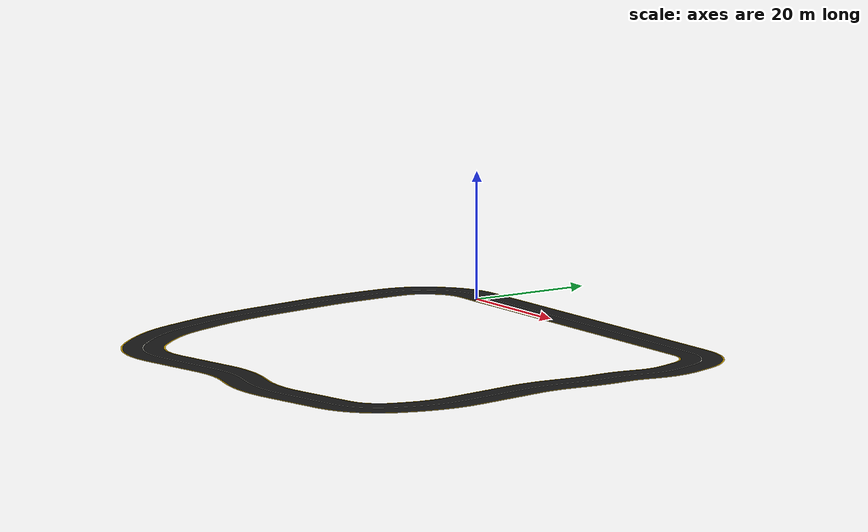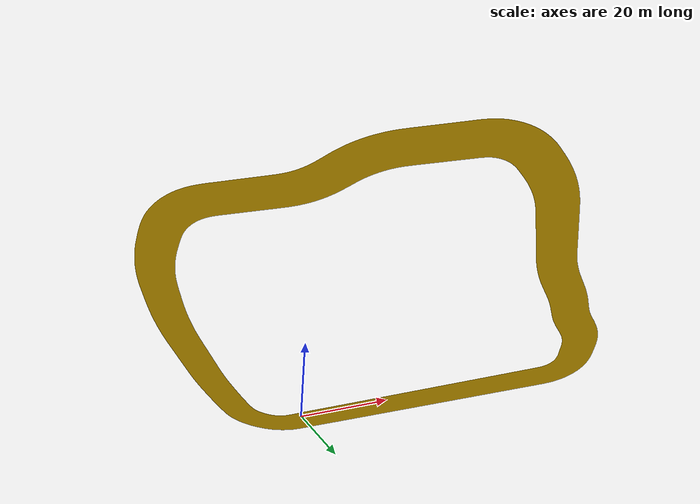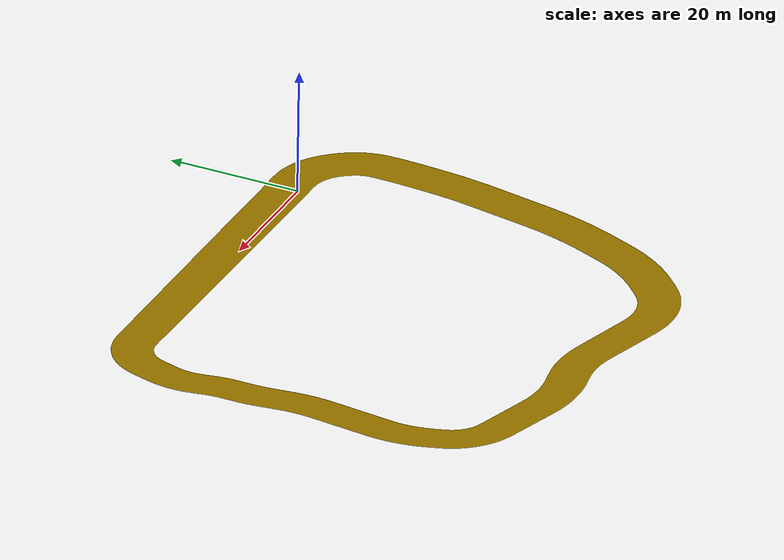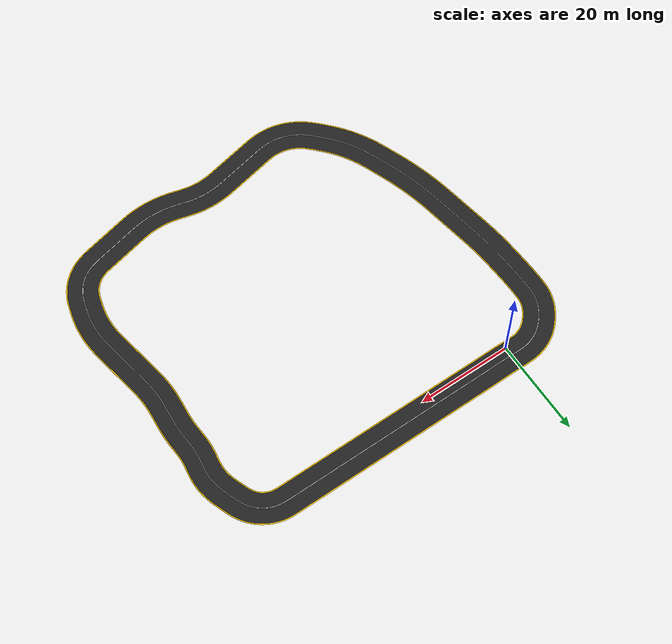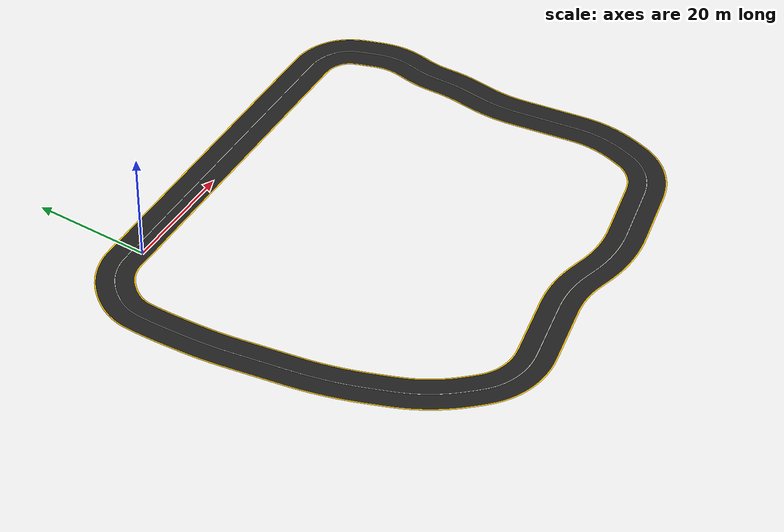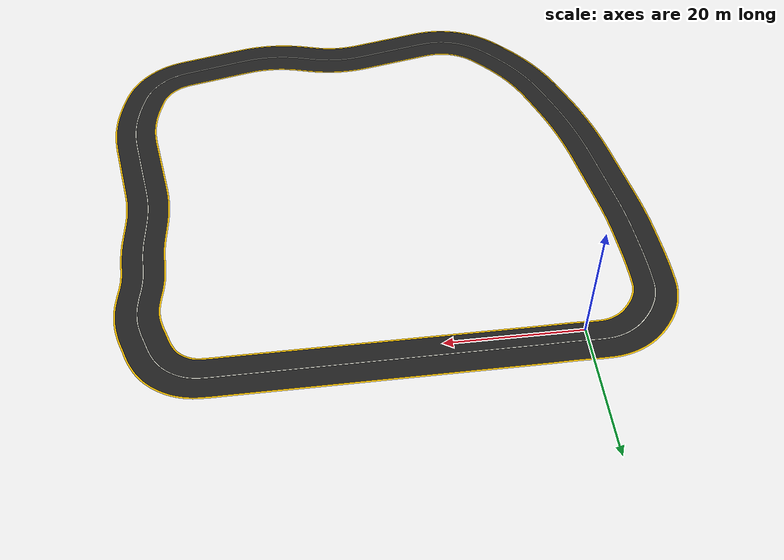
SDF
<?xml version="1.0"?>
<sdf version="1.7">
  <model name="smooth_road">
    <static>true</static>
    <link name="road_surface">
      <collision name="smooth_asphalt_collision">
        <pose>0 0 0.026 0 0 0</pose>
        <geometry>
          <mesh>
            <uri>meshes/asphalt.obj</uri>
          </mesh>
        </geometry>
      </collision>
      <visual name="continuous_yellow_border">
        <pose>0 0 0.026 0 0 0</pose>
        <geometry>
          <mesh>
            <uri>meshes/yellow_border.obj</uri>
          </mesh>
        </geometry>
        <material>
          <ambient>1.0 0.78 0.0 1.0</ambient>
          <diffuse>1.0 0.78 0.0 1.0</diffuse>
          <specular>0.08 0.08 0.06 1.0</specular>
        </material>
      </visual>
      <visual name="continuous_asphalt">
        <pose>0 0 0.029 0 0 0</pose>
        <geometry>
          <mesh>
            <uri>meshes/asphalt.obj</uri>
          </mesh>
        </geometry>
        <material>
          <ambient>0.13 0.13 0.13 1.0</ambient>
          <diffuse>0.13 0.13 0.13 1.0</diffuse>
          <specular>0.035 0.035 0.035 1.0</specular>
        </material>
      </visual>
      <visual name="center_lane_line">
        <pose>0 0 0.033 0 0 0</pose>
        <geometry>
          <mesh>
            <uri>meshes/center_line.obj</uri>
          </mesh>
        </geometry>
        <material>
          <ambient>0.95 0.95 0.9 1.0</ambient>
          <diffuse>0.95 0.95 0.9 1.0</diffuse>
        </material>
      </visual>
    </link>
  </model>
</sdf>
